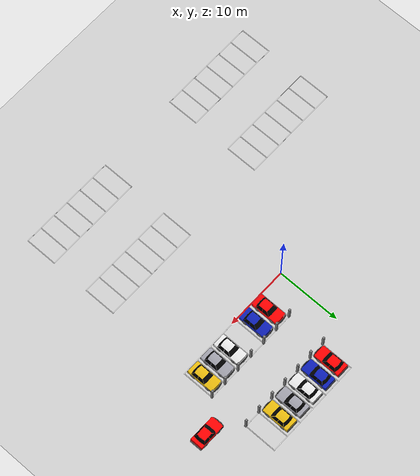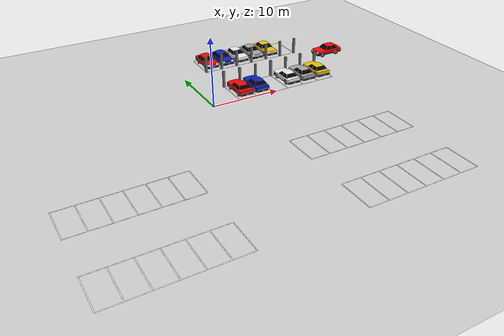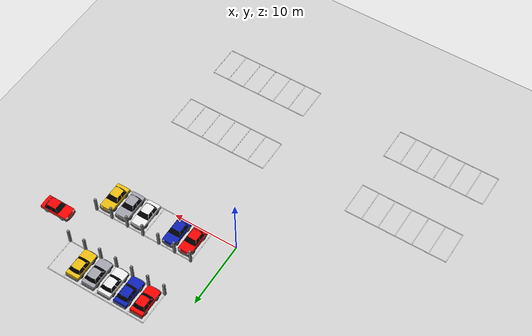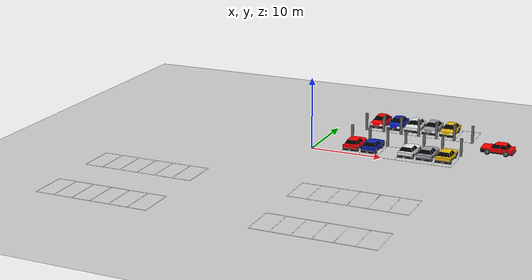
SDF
<sdf version="1.6">
 <world name="parking_lot">
  <include><uri>model://sun</uri></include>
  <include><uri>model://ground_plane</uri></include>
  <model name="parking_lines">
   <static>true</static>
   <link name="lines">
    <visual name="A_r0_div0">
     <pose>4.050 13.500 0.02 0 0 0</pose>
     <geometry><box><size>0.100 5.000 0.01</size></box></geometry>
     <material><ambient>1 1 1 1</ambient><diffuse>1 1 1 1</diffuse></material>
    </visual>
    <visual name="A_r0_div1">
     <pose>6.650 13.500 0.02 0 0 0</pose>
     <geometry><box><size>0.100 5.000 0.01</size></box></geometry>
     <material><ambient>1 1 1 1</ambient><diffuse>1 1 1 1</diffuse></material>
    </visual>
    <visual name="A_r0_div2">
     <pose>9.250 13.500 0.02 0 0 0</pose>
     <geometry><box><size>0.100 5.000 0.01</size></box></geometry>
     <material><ambient>1 1 1 1</ambient><diffuse>1 1 1 1</diffuse></material>
    </visual>
    <visual name="A_r0_div3">
     <pose>11.850 13.500 0.02 0 0 0</pose>
     <geometry><box><size>0.100 5.000 0.01</size></box></geometry>
     <material><ambient>1 1 1 1</ambient><diffuse>1 1 1 1</diffuse></material>
    </visual>
    <visual name="A_r0_div4">
     <pose>14.450 13.500 0.02 0 0 0</pose>
     <geometry><box><size>0.100 5.000 0.01</size></box></geometry>
     <material><ambient>1 1 1 1</ambient><diffuse>1 1 1 1</diffuse></material>
    </visual>
    <visual name="A_r0_div5">
     <pose>17.050 13.500 0.02 0 0 0</pose>
     <geometry><box><size>0.100 5.000 0.01</size></box></geometry>
     <material><ambient>1 1 1 1</ambient><diffuse>1 1 1 1</diffuse></material>
    </visual>
    <visual name="A_r0_div6">
     <pose>19.650 13.500 0.02 0 0 0</pose>
     <geometry><box><size>0.100 5.000 0.01</size></box></geometry>
     <material><ambient>1 1 1 1</ambient><diffuse>1 1 1 1</diffuse></material>
    </visual>
    <visual name="A_r1_div0">
     <pose>4.050 2.500 0.02 0 0 0</pose>
     <geometry><box><size>0.100 5.000 0.01</size></box></geometry>
     <material><ambient>1 1 1 1</ambient><diffuse>1 1 1 1</diffuse></material>
    </visual>
    <visual name="A_r1_div1">
     <pose>6.650 2.500 0.02 0 0 0</pose>
     <geometry><box><size>0.100 5.000 0.01</size></box></geometry>
     <material><ambient>1 1 1 1</ambient><diffuse>1 1 1 1</diffuse></material>
    </visual>
    <visual name="A_r1_div2">
     <pose>9.250 2.500 0.02 0 0 0</pose>
     <geometry><box><size>0.100 5.000 0.01</size></box></geometry>
     <material><ambient>1 1 1 1</ambient><diffuse>1 1 1 1</diffuse></material>
    </visual>
    <visual name="A_r1_div3">
     <pose>11.850 2.500 0.02 0 0 0</pose>
     <geometry><box><size>0.100 5.000 0.01</size></box></geometry>
     <material><ambient>1 1 1 1</ambient><diffuse>1 1 1 1</diffuse></material>
    </visual>
    <visual name="A_r1_div4">
     <pose>14.450 2.500 0.02 0 0 0</pose>
     <geometry><box><size>0.100 5.000 0.01</size></box></geometry>
     <material><ambient>1 1 1 1</ambient><diffuse>1 1 1 1</diffuse></material>
    </visual>
    <visual name="A_r1_div5">
     <pose>17.050 2.500 0.02 0 0 0</pose>
     <geometry><box><size>0.100 5.000 0.01</size></box></geometry>
     <material><ambient>1 1 1 1</ambient><diffuse>1 1 1 1</diffuse></material>
    </visual>
    <visual name="A_r1_div6">
     <pose>19.650 2.500 0.02 0 0 0</pose>
     <geometry><box><size>0.100 5.000 0.01</size></box></geometry>
     <material><ambient>1 1 1 1</ambient><diffuse>1 1 1 1</diffuse></material>
    </visual>
    <visual name="A_bound0">
     <pose>11.850 0.000 0.02 0 0 0</pose>
     <geometry><box><size>15.700 0.100 0.01</size></box></geometry>
     <material><ambient>1 1 1 1</ambient><diffuse>1 1 1 1</diffuse></material>
    </visual>
    <visual name="A_bound1">
     <pose>11.850 5.000 0.02 0 0 0</pose>
     <geometry><box><size>15.700 0.100 0.01</size></box></geometry>
     <material><ambient>1 1 1 1</ambient><diffuse>1 1 1 1</diffuse></material>
    </visual>
    <visual name="A_bound2">
     <pose>11.850 11.000 0.02 0 0 0</pose>
     <geometry><box><size>15.700 0.100 0.01</size></box></geometry>
     <material><ambient>1 1 1 1</ambient><diffuse>1 1 1 1</diffuse></material>
    </visual>
    <visual name="A_bound3">
     <pose>11.850 16.000 0.02 0 0 0</pose>
     <geometry><box><size>15.700 0.100 0.01</size></box></geometry>
     <material><ambient>1 1 1 1</ambient><diffuse>1 1 1 1</diffuse></material>
    </visual>
    <visual name="B_r0_div0">
     <pose>-24.950 -15.500 0.02 0 0 0</pose>
     <geometry><box><size>0.100 5.000 0.01</size></box></geometry>
     <material><ambient>1 1 1 1</ambient><diffuse>1 1 1 1</diffuse></material>
    </visual>
    <visual name="B_r0_div1">
     <pose>-22.350 -15.500 0.02 0 0 0</pose>
     <geometry><box><size>0.100 5.000 0.01</size></box></geometry>
     <material><ambient>1 1 1 1</ambient><diffuse>1 1 1 1</diffuse></material>
    </visual>
    <visual name="B_r0_div2">
     <pose>-19.750 -15.500 0.02 0 0 0</pose>
     <geometry><box><size>0.100 5.000 0.01</size></box></geometry>
     <material><ambient>1 1 1 1</ambient><diffuse>1 1 1 1</diffuse></material>
    </visual>
    <visual name="B_r0_div3">
     <pose>-17.150 -15.500 0.02 0 0 0</pose>
     <geometry><box><size>0.100 5.000 0.01</size></box></geometry>
     <material><ambient>1 1 1 1</ambient><diffuse>1 1 1 1</diffuse></material>
    </visual>
    <visual name="B_r0_div4">
     <pose>-14.550 -15.500 0.02 0 0 0</pose>
     <geometry><box><size>0.100 5.000 0.01</size></box></geometry>
     <material><ambient>1 1 1 1</ambient><diffuse>1 1 1 1</diffuse></material>
    </visual>
    <visual name="B_r0_div5">
     <pose>-11.950 -15.500 0.02 0 0 0</pose>
     <geometry><box><size>0.100 5.000 0.01</size></box></geometry>
     <material><ambient>1 1 1 1</ambient><diffuse>1 1 1 1</diffuse></material>
    </visual>
    <visual name="B_r0_div6">
     <pose>-9.350 -15.500 0.02 0 0 0</pose>
     <geometry><box><size>0.100 5.000 0.01</size></box></geometry>
     <material><ambient>1 1 1 1</ambient><diffuse>1 1 1 1</diffuse></material>
    </visual>
    <visual name="B_r1_div0">
     <pose>-24.950 -26.500 0.02 0 0 0</pose>
     <geometry><box><size>0.100 5.000 0.01</size></box></geometry>
     <material><ambient>1 1 1 1</ambient><diffuse>1 1 1 1</diffuse></material>
    </visual>
    <visual name="B_r1_div1">
     <pose>-22.350 -26.500 0.02 0 0 0</pose>
     <geometry><box><size>0.100 5.000 0.01</size></box></geometry>
     <material><ambient>1 1 1 1</ambient><diffuse>1 1 1 1</diffuse></material>
    </visual>
    <visual name="B_r1_div2">
     <pose>-19.750 -26.500 0.02 0 0 0</pose>
     <geometry><box><size>0.100 5.000 0.01</size></box></geometry>
     <material><ambient>1 1 1 1</ambient><diffuse>1 1 1 1</diffuse></material>
    </visual>
    <visual name="B_r1_div3">
     <pose>-17.150 -26.500 0.02 0 0 0</pose>
     <geometry><box><size>0.100 5.000 0.01</size></box></geometry>
     <material><ambient>1 1 1 1</ambient><diffuse>1 1 1 1</diffuse></material>
    </visual>
    <visual name="B_r1_div4">
     <pose>-14.550 -26.500 0.02 0 0 0</pose>
     <geometry><box><size>0.100 5.000 0.01</size></box></geometry>
     <material><ambient>1 1 1 1</ambient><diffuse>1 1 1 1</diffuse></material>
    </visual>
    <visual name="B_r1_div5">
     <pose>-11.950 -26.500 0.02 0 0 0</pose>
     <geometry><box><size>0.100 5.000 0.01</size></box></geometry>
     <material><ambient>1 1 1 1</ambient><diffuse>1 1 1 1</diffuse></material>
    </visual>
    <visual name="B_r1_div6">
     <pose>-9.350 -26.500 0.02 0 0 0</pose>
     <geometry><box><size>0.100 5.000 0.01</size></box></geometry>
     <material><ambient>1 1 1 1</ambient><diffuse>1 1 1 1</diffuse></material>
    </visual>
    <visual name="B_bound0">
     <pose>-17.150 -29.000 0.02 0 0 0</pose>
     <geometry><box><size>15.700 0.100 0.01</size></box></geometry>
     <material><ambient>1 1 1 1</ambient><diffuse>1 1 1 1</diffuse></material>
    </visual>
    <visual name="B_bound1">
     <pose>-17.150 -24.000 0.02 0 0 0</pose>
     <geometry><box><size>15.700 0.100 0.01</size></box></geometry>
     <material><ambient>1 1 1 1</ambient><diffuse>1 1 1 1</diffuse></material>
    </visual>
    <visual name="B_bound2">
     <pose>-17.150 -18.000 0.02 0 0 0</pose>
     <geometry><box><size>15.700 0.100 0.01</size></box></geometry>
     <material><ambient>1 1 1 1</ambient><diffuse>1 1 1 1</diffuse></material>
    </visual>
    <visual name="B_bound3">
     <pose>-17.150 -13.000 0.02 0 0 0</pose>
     <geometry><box><size>15.700 0.100 0.01</size></box></geometry>
     <material><ambient>1 1 1 1</ambient><diffuse>1 1 1 1</diffuse></material>
    </visual>
    <visual name="C_r0_div0">
     <pose>4.050 -15.500 0.02 0 0 0</pose>
     <geometry><box><size>0.100 5.000 0.01</size></box></geometry>
     <material><ambient>1 1 1 1</ambient><diffuse>1 1 1 1</diffuse></material>
    </visual>
    <visual name="C_r0_div1">
     <pose>6.650 -15.500 0.02 0 0 0</pose>
     <geometry><box><size>0.100 5.000 0.01</size></box></geometry>
     <material><ambient>1 1 1 1</ambient><diffuse>1 1 1 1</diffuse></material>
    </visual>
    <visual name="C_r0_div2">
     <pose>9.250 -15.500 0.02 0 0 0</pose>
     <geometry><box><size>0.100 5.000 0.01</size></box></geometry>
     <material><ambient>1 1 1 1</ambient><diffuse>1 1 1 1</diffuse></material>
    </visual>
    <visual name="C_r0_div3">
     <pose>11.850 -15.500 0.02 0 0 0</pose>
     <geometry><box><size>0.100 5.000 0.01</size></box></geometry>
     <material><ambient>1 1 1 1</ambient><diffuse>1 1 1 1</diffuse></material>
    </visual>
    <visual name="C_r0_div4">
     <pose>14.450 -15.500 0.02 0 0 0</pose>
     <geometry><box><size>0.100 5.000 0.01</size></box></geometry>
     <material><ambient>1 1 1 1</ambient><diffuse>1 1 1 1</diffuse></material>
    </visual>
    <visual name="C_r0_div5">
     <pose>17.050 -15.500 0.02 0 0 0</pose>
     <geometry><box><size>0.100 5.000 0.01</size></box></geometry>
     <material><ambient>1 1 1 1</ambient><diffuse>1 1 1 1</diffuse></material>
    </visual>
    <visual name="C_r0_div6">
     <pose>19.650 -15.500 0.02 0 0 0</pose>
     <geometry><box><size>0.100 5.000 0.01</size></box></geometry>
     <material><ambient>1 1 1 1</ambient><diffuse>1 1 1 1</diffuse></material>
    </visual>
    <visual name="C_r1_div0">
     <pose>4.050 -26.500 0.02 0 0 0</pose>
     <geometry><box><size>0.100 5.000 0.01</size></box></geometry>
     <material><ambient>1 1 1 1</ambient><diffuse>1 1 1 1</diffuse></material>
    </visual>
    <visual name="C_r1_div1">
     <pose>6.650 -26.500 0.02 0 0 0</pose>
     <geometry><box><size>0.100 5.000 0.01</size></box></geometry>
     <material><ambient>1 1 1 1</ambient><diffuse>1 1 1 1</diffuse></material>
    </visual>
    <visual name="C_r1_div2">
     <pose>9.250 -26.500 0.02 0 0 0</pose>
     <geometry><box><size>0.100 5.000 0.01</size></box></geometry>
     <material><ambient>1 1 1 1</ambient><diffuse>1 1 1 1</diffuse></material>
    </visual>
    <visual name="C_r1_div3">
     <pose>11.850 -26.500 0.02 0 0 0</pose>
     <geometry><box><size>0.100 5.000 0.01</size></box></geometry>
     <material><ambient>1 1 1 1</ambient><diffuse>1 1 1 1</diffuse></material>
    </visual>
    <visual name="C_r1_div4">
     <pose>14.450 -26.500 0.02 0 0 0</pose>
     <geometry><box><size>0.100 5.000 0.01</size></box></geometry>
     <material><ambient>1 1 1 1</ambient><diffuse>1 1 1 1</diffuse></material>
    </visual>
    <visual name="C_r1_div5">
     <pose>17.050 -26.500 0.02 0 0 0</pose>
     <geometry><box><size>0.100 5.000 0.01</size></box></geometry>
     <material><ambient>1 1 1 1</ambient><diffuse>1 1 1 1</diffuse></material>
    </visual>
    <visual name="C_r1_div6">
     <pose>19.650 -26.500 0.02 0 0 0</pose>
     <geometry><box><size>0.100 5.000 0.01</size></box></geometry>
     <material><ambient>1 1 1 1</ambient><diffuse>1 1 1 1</diffuse></material>
    </visual>
    <visual name="C_bound0">
     <pose>11.850 -29.000 0.02 0 0 0</pose>
     <geometry><box><size>15.700 0.100 0.01</size></box></geometry>
     <material><ambient>1 1 1 1</ambient><diffuse>1 1 1 1</diffuse></material>
    </visual>
    <visual name="C_bound1">
     <pose>11.850 -24.000 0.02 0 0 0</pose>
     <geometry><box><size>15.700 0.100 0.01</size></box></geometry>
     <material><ambient>1 1 1 1</ambient><diffuse>1 1 1 1</diffuse></material>
    </visual>
    <visual name="C_bound2">
     <pose>11.850 -18.000 0.02 0 0 0</pose>
     <geometry><box><size>15.700 0.100 0.01</size></box></geometry>
     <material><ambient>1 1 1 1</ambient><diffuse>1 1 1 1</diffuse></material>
    </visual>
    <visual name="C_bound3">
     <pose>11.850 -13.000 0.02 0 0 0</pose>
     <geometry><box><size>15.700 0.100 0.01</size></box></geometry>
     <material><ambient>1 1 1 1</ambient><diffuse>1 1 1 1</diffuse></material>
    </visual>
   </link>
  </model>
  <model name="pillars">
   <static>true</static>
   <link name="pillars_link">
    <collision name="pc0">
     <pose>4.050 11.000 1.25 0 0 0</pose>
     <geometry><box><size>0.3 0.3 2.5</size></box></geometry>
    </collision>
    <visual name="pv0">
     <pose>4.050 11.000 1.25 0 0 0</pose>
     <geometry><box><size>0.3 0.3 2.5</size></box></geometry>
     <material><ambient>0.5 0.5 0.5 1</ambient><diffuse>0.5 0.5 0.5 1</diffuse></material>
    </visual>
    <collision name="pc1">
     <pose>6.650 11.000 1.25 0 0 0</pose>
     <geometry><box><size>0.3 0.3 2.5</size></box></geometry>
    </collision>
    <visual name="pv1">
     <pose>6.650 11.000 1.25 0 0 0</pose>
     <geometry><box><size>0.3 0.3 2.5</size></box></geometry>
     <material><ambient>0.5 0.5 0.5 1</ambient><diffuse>0.5 0.5 0.5 1</diffuse></material>
    </visual>
    <collision name="pc2">
     <pose>9.250 11.000 1.25 0 0 0</pose>
     <geometry><box><size>0.3 0.3 2.5</size></box></geometry>
    </collision>
    <visual name="pv2">
     <pose>9.250 11.000 1.25 0 0 0</pose>
     <geometry><box><size>0.3 0.3 2.5</size></box></geometry>
     <material><ambient>0.5 0.5 0.5 1</ambient><diffuse>0.5 0.5 0.5 1</diffuse></material>
    </visual>
    <collision name="pc3">
     <pose>11.850 11.000 1.25 0 0 0</pose>
     <geometry><box><size>0.3 0.3 2.5</size></box></geometry>
    </collision>
    <visual name="pv3">
     <pose>11.850 11.000 1.25 0 0 0</pose>
     <geometry><box><size>0.3 0.3 2.5</size></box></geometry>
     <material><ambient>0.5 0.5 0.5 1</ambient><diffuse>0.5 0.5 0.5 1</diffuse></material>
    </visual>
    <collision name="pc4">
     <pose>14.450 11.000 1.25 0 0 0</pose>
     <geometry><box><size>0.3 0.3 2.5</size></box></geometry>
    </collision>
    <visual name="pv4">
     <pose>14.450 11.000 1.25 0 0 0</pose>
     <geometry><box><size>0.3 0.3 2.5</size></box></geometry>
     <material><ambient>0.5 0.5 0.5 1</ambient><diffuse>0.5 0.5 0.5 1</diffuse></material>
    </visual>
    <collision name="pc5">
     <pose>17.050 11.000 1.25 0 0 0</pose>
     <geometry><box><size>0.3 0.3 2.5</size></box></geometry>
    </collision>
    <visual name="pv5">
     <pose>17.050 11.000 1.25 0 0 0</pose>
     <geometry><box><size>0.3 0.3 2.5</size></box></geometry>
     <material><ambient>0.5 0.5 0.5 1</ambient><diffuse>0.5 0.5 0.5 1</diffuse></material>
    </visual>
    <collision name="pc6">
     <pose>19.650 11.000 1.25 0 0 0</pose>
     <geometry><box><size>0.3 0.3 2.5</size></box></geometry>
    </collision>
    <visual name="pv6">
     <pose>19.650 11.000 1.25 0 0 0</pose>
     <geometry><box><size>0.3 0.3 2.5</size></box></geometry>
     <material><ambient>0.5 0.5 0.5 1</ambient><diffuse>0.5 0.5 0.5 1</diffuse></material>
    </visual>
    <collision name="pc7">
     <pose>4.050 5.000 1.25 0 0 0</pose>
     <geometry><box><size>0.3 0.3 2.5</size></box></geometry>
    </collision>
    <visual name="pv7">
     <pose>4.050 5.000 1.25 0 0 0</pose>
     <geometry><box><size>0.3 0.3 2.5</size></box></geometry>
     <material><ambient>0.5 0.5 0.5 1</ambient><diffuse>0.5 0.5 0.5 1</diffuse></material>
    </visual>
    <collision name="pc8">
     <pose>6.650 5.000 1.25 0 0 0</pose>
     <geometry><box><size>0.3 0.3 2.5</size></box></geometry>
    </collision>
    <visual name="pv8">
     <pose>6.650 5.000 1.25 0 0 0</pose>
     <geometry><box><size>0.3 0.3 2.5</size></box></geometry>
     <material><ambient>0.5 0.5 0.5 1</ambient><diffuse>0.5 0.5 0.5 1</diffuse></material>
    </visual>
    <collision name="pc9">
     <pose>9.250 5.000 1.25 0 0 0</pose>
     <geometry><box><size>0.3 0.3 2.5</size></box></geometry>
    </collision>
    <visual name="pv9">
     <pose>9.250 5.000 1.25 0 0 0</pose>
     <geometry><box><size>0.3 0.3 2.5</size></box></geometry>
     <material><ambient>0.5 0.5 0.5 1</ambient><diffuse>0.5 0.5 0.5 1</diffuse></material>
    </visual>
    <collision name="pc10">
     <pose>11.850 5.000 1.25 0 0 0</pose>
     <geometry><box><size>0.3 0.3 2.5</size></box></geometry>
    </collision>
    <visual name="pv10">
     <pose>11.850 5.000 1.25 0 0 0</pose>
     <geometry><box><size>0.3 0.3 2.5</size></box></geometry>
     <material><ambient>0.5 0.5 0.5 1</ambient><diffuse>0.5 0.5 0.5 1</diffuse></material>
    </visual>
    <collision name="pc11">
     <pose>14.450 5.000 1.25 0 0 0</pose>
     <geometry><box><size>0.3 0.3 2.5</size></box></geometry>
    </collision>
    <visual name="pv11">
     <pose>14.450 5.000 1.25 0 0 0</pose>
     <geometry><box><size>0.3 0.3 2.5</size></box></geometry>
     <material><ambient>0.5 0.5 0.5 1</ambient><diffuse>0.5 0.5 0.5 1</diffuse></material>
    </visual>
    <collision name="pc12">
     <pose>17.050 5.000 1.25 0 0 0</pose>
     <geometry><box><size>0.3 0.3 2.5</size></box></geometry>
    </collision>
    <visual name="pv12">
     <pose>17.050 5.000 1.25 0 0 0</pose>
     <geometry><box><size>0.3 0.3 2.5</size></box></geometry>
     <material><ambient>0.5 0.5 0.5 1</ambient><diffuse>0.5 0.5 0.5 1</diffuse></material>
    </visual>
    <collision name="pc13">
     <pose>19.650 5.000 1.25 0 0 0</pose>
     <geometry><box><size>0.3 0.3 2.5</size></box></geometry>
    </collision>
    <visual name="pv13">
     <pose>19.650 5.000 1.25 0 0 0</pose>
     <geometry><box><size>0.3 0.3 2.5</size></box></geometry>
     <material><ambient>0.5 0.5 0.5 1</ambient><diffuse>0.5 0.5 0.5 1</diffuse></material>
    </visual>
   </link>
  </model>
  <model name="car_A01">
   <static>true</static>
   <pose>5.350 13.500 0 0 0 0.0</pose>
   <link name="body">
    <collision name="col">
     <pose>0 0 0.75 0 0 0</pose>
     <geometry><box><size>2.1 4.7 1.5</size></box></geometry>
    </collision>
    <visual name="vis">
     <geometry><mesh><uri>model://target_car/meshes/Car_red.dae</uri><scale>1 1 1</scale></mesh></geometry>
    </visual>
    <visual name="plate_front">
     <pose>0 -2.4 0.45 0 0 0.0</pose>
     <geometry><box><size>0.335 0.01 0.17</size></box></geometry>
     <material>
      <script>
       <uri>model://target_car/materials/scripts</uri>
       <uri>model://target_car/materials/textures</uri>
       <name>CarPlate/A01</name>
      </script>
     </material>
    </visual>
    <visual name="plate_rear">
     <pose>0 2.285 0.45 0 0 0.0</pose>
     <geometry><box><size>0.335 0.01 0.17</size></box></geometry>
     <material>
      <script>
       <uri>model://target_car/materials/scripts</uri>
       <uri>model://target_car/materials/textures</uri>
       <name>CarPlate/A01</name>
      </script>
     </material>
    </visual>
   </link>
  </model>
  <model name="car_A02">
   <static>true</static>
   <pose>7.950 13.500 0 0 0 0.0</pose>
   <link name="body">
    <collision name="col">
     <pose>0 0 0.75 0 0 0</pose>
     <geometry><box><size>2.1 4.7 1.5</size></box></geometry>
    </collision>
    <visual name="vis">
     <geometry><mesh><uri>model://target_car/meshes/Car_blue.dae</uri><scale>1 1 1</scale></mesh></geometry>
    </visual>
    <visual name="plate_front">
     <pose>0 -2.4 0.45 0 0 0.0</pose>
     <geometry><box><size>0.335 0.01 0.17</size></box></geometry>
     <material>
      <script>
       <uri>model://target_car/materials/scripts</uri>
       <uri>model://target_car/materials/textures</uri>
       <name>CarPlate/A02</name>
      </script>
     </material>
    </visual>
    <visual name="plate_rear">
     <pose>0 2.285 0.45 0 0 0.0</pose>
     <geometry><box><size>0.335 0.01 0.17</size></box></geometry>
     <material>
      <script>
       <uri>model://target_car/materials/scripts</uri>
       <uri>model://target_car/materials/textures</uri>
       <name>CarPlate/A02</name>
      </script>
     </material>
    </visual>
   </link>
  </model>
  <model name="car_A03">
   <static>true</static>
   <pose>10.550 13.500 0 0 0 0.0</pose>
   <link name="body">
    <collision name="col">
     <pose>0 0 0.75 0 0 0</pose>
     <geometry><box><size>2.1 4.7 1.5</size></box></geometry>
    </collision>
    <visual name="vis">
     <geometry><mesh><uri>model://target_car/meshes/Car_white.dae</uri><scale>1 1 1</scale></mesh></geometry>
    </visual>
    <visual name="plate_front">
     <pose>0 -2.4 0.45 0 0 0.0</pose>
     <geometry><box><size>0.335 0.01 0.17</size></box></geometry>
     <material>
      <script>
       <uri>model://target_car/materials/scripts</uri>
       <uri>model://target_car/materials/textures</uri>
       <name>CarPlate/A03</name>
      </script>
     </material>
    </visual>
    <visual name="plate_rear">
     <pose>0 2.285 0.45 0 0 0.0</pose>
     <geometry><box><size>0.335 0.01 0.17</size></box></geometry>
     <material>
      <script>
       <uri>model://target_car/materials/scripts</uri>
       <uri>model://target_car/materials/textures</uri>
       <name>CarPlate/A03</name>
      </script>
     </material>
    </visual>
   </link>
  </model>
  <model name="car_A04">
   <static>true</static>
   <pose>13.150 13.500 0 0 0 0.0</pose>
   <link name="body">
    <collision name="col">
     <pose>0 0 0.75 0 0 0</pose>
     <geometry><box><size>2.1 4.7 1.5</size></box></geometry>
    </collision>
    <visual name="vis">
     <geometry><mesh><uri>model://target_car/meshes/Car_silver.dae</uri><scale>1 1 1</scale></mesh></geometry>
    </visual>
    <visual name="plate_front">
     <pose>0 -2.4 0.45 0 0 0.0</pose>
     <geometry><box><size>0.335 0.01 0.17</size></box></geometry>
     <material>
      <script>
       <uri>model://target_car/materials/scripts</uri>
       <uri>model://target_car/materials/textures</uri>
       <name>CarPlate/A04</name>
      </script>
     </material>
    </visual>
    <visual name="plate_rear">
     <pose>0 2.285 0.45 0 0 0.0</pose>
     <geometry><box><size>0.335 0.01 0.17</size></box></geometry>
     <material>
      <script>
       <uri>model://target_car/materials/scripts</uri>
       <uri>model://target_car/materials/textures</uri>
       <name>CarPlate/A04</name>
      </script>
     </material>
    </visual>
   </link>
  </model>
  <model name="car_A05">
   <static>true</static>
   <pose>15.750 13.500 0 0 0 0.0</pose>
   <link name="body">
    <collision name="col">
     <pose>0 0 0.75 0 0 0</pose>
     <geometry><box><size>2.1 4.7 1.5</size></box></geometry>
    </collision>
    <visual name="vis">
     <geometry><mesh><uri>model://target_car/meshes/Car_yellow.dae</uri><scale>1 1 1</scale></mesh></geometry>
    </visual>
    <visual name="plate_front">
     <pose>0 -2.4 0.45 0 0 0.0</pose>
     <geometry><box><size>0.335 0.01 0.17</size></box></geometry>
     <material>
      <script>
       <uri>model://target_car/materials/scripts</uri>
       <uri>model://target_car/materials/textures</uri>
       <name>CarPlate/A05</name>
      </script>
     </material>
    </visual>
    <visual name="plate_rear">
     <pose>0 2.285 0.45 0 0 0.0</pose>
     <geometry><box><size>0.335 0.01 0.17</size></box></geometry>
     <material>
      <script>
       <uri>model://target_car/materials/scripts</uri>
       <uri>model://target_car/materials/textures</uri>
       <name>CarPlate/A05</name>
      </script>
     </material>
    </visual>
   </link>
  </model>
  <model name="car_A07">
   <static>true</static>
   <pose>5.350 2.500 0 0 0 3.14159</pose>
   <link name="body">
    <collision name="col">
     <pose>0 0 0.75 0 0 0</pose>
     <geometry><box><size>2.1 4.7 1.5</size></box></geometry>
    </collision>
    <visual name="vis">
     <geometry><mesh><uri>model://target_car/meshes/Car_red.dae</uri><scale>1 1 1</scale></mesh></geometry>
    </visual>
    <visual name="plate_front">
     <pose>0 -2.4 0.45 0 0 0.0</pose>
     <geometry><box><size>0.335 0.01 0.17</size></box></geometry>
     <material>
      <script>
       <uri>model://target_car/materials/scripts</uri>
       <uri>model://target_car/materials/textures</uri>
       <name>CarPlate/A07</name>
      </script>
     </material>
    </visual>
    <visual name="plate_rear">
     <pose>0 2.285 0.45 0 0 0.0</pose>
     <geometry><box><size>0.335 0.01 0.17</size></box></geometry>
     <material>
      <script>
       <uri>model://target_car/materials/scripts</uri>
       <uri>model://target_car/materials/textures</uri>
       <name>CarPlate/A07</name>
      </script>
     </material>
    </visual>
   </link>
  </model>
  <model name="car_A08">
   <static>true</static>
   <pose>7.950 2.500 0 0 0 3.14159</pose>
   <link name="body">
    <collision name="col">
     <pose>0 0 0.75 0 0 0</pose>
     <geometry><box><size>2.1 4.7 1.5</size></box></geometry>
    </collision>
    <visual name="vis">
     <geometry><mesh><uri>model://target_car/meshes/Car_blue.dae</uri><scale>1 1 1</scale></mesh></geometry>
    </visual>
    <visual name="plate_front">
     <pose>0 -2.4 0.45 0 0 0.0</pose>
     <geometry><box><size>0.335 0.01 0.17</size></box></geometry>
     <material>
      <script>
       <uri>model://target_car/materials/scripts</uri>
       <uri>model://target_car/materials/textures</uri>
       <name>CarPlate/A08</name>
      </script>
     </material>
    </visual>
    <visual name="plate_rear">
     <pose>0 2.285 0.45 0 0 0.0</pose>
     <geometry><box><size>0.335 0.01 0.17</size></box></geometry>
     <material>
      <script>
       <uri>model://target_car/materials/scripts</uri>
       <uri>model://target_car/materials/textures</uri>
       <name>CarPlate/A08</name>
      </script>
     </material>
    </visual>
   </link>
  </model>
  <model name="car_A10">
   <static>true</static>
   <pose>13.150 2.500 0 0 0 3.14159</pose>
   <link name="body">
    <collision name="col">
     <pose>0 0 0.75 0 0 0</pose>
     <geometry><box><size>2.1 4.7 1.5</size></box></geometry>
    </collision>
    <visual name="vis">
     <geometry><mesh><uri>model://target_car/meshes/Car_white.dae</uri><scale>1 1 1</scale></mesh></geometry>
    </visual>
    <visual name="plate_front">
     <pose>0 -2.4 0.45 0 0 0.0</pose>
     <geometry><box><size>0.335 0.01 0.17</size></box></geometry>
     <material>
      <script>
       <uri>model://target_car/materials/scripts</uri>
       <uri>model://target_car/materials/textures</uri>
       <name>CarPlate/A10</name>
      </script>
     </material>
    </visual>
    <visual name="plate_rear">
     <pose>0 2.285 0.45 0 0 0.0</pose>
     <geometry><box><size>0.335 0.01 0.17</size></box></geometry>
     <material>
      <script>
       <uri>model://target_car/materials/scripts</uri>
       <uri>model://target_car/materials/textures</uri>
       <name>CarPlate/A10</name>
      </script>
     </material>
    </visual>
   </link>
  </model>
  <model name="car_A11">
   <static>true</static>
   <pose>15.750 2.500 0 0 0 3.14159</pose>
   <link name="body">
    <collision name="col">
     <pose>0 0 0.75 0 0 0</pose>
     <geometry><box><size>2.1 4.7 1.5</size></box></geometry>
    </collision>
    <visual name="vis">
     <geometry><mesh><uri>model://target_car/meshes/Car_silver.dae</uri><scale>1 1 1</scale></mesh></geometry>
    </visual>
    <visual name="plate_front">
     <pose>0 -2.4 0.45 0 0 0.0</pose>
     <geometry><box><size>0.335 0.01 0.17</size></box></geometry>
     <material>
      <script>
       <uri>model://target_car/materials/scripts</uri>
       <uri>model://target_car/materials/textures</uri>
       <name>CarPlate/A11</name>
      </script>
     </material>
    </visual>
    <visual name="plate_rear">
     <pose>0 2.285 0.45 0 0 0.0</pose>
     <geometry><box><size>0.335 0.01 0.17</size></box></geometry>
     <material>
      <script>
       <uri>model://target_car/materials/scripts</uri>
       <uri>model://target_car/materials/textures</uri>
       <name>CarPlate/A11</name>
      </script>
     </material>
    </visual>
   </link>
  </model>
  <model name="car_A12">
   <static>true</static>
   <pose>18.350 2.500 0 0 0 3.14159</pose>
   <link name="body">
    <collision name="col">
     <pose>0 0 0.75 0 0 0</pose>
     <geometry><box><size>2.1 4.7 1.5</size></box></geometry>
    </collision>
    <visual name="vis">
     <geometry><mesh><uri>model://target_car/meshes/Car_yellow.dae</uri><scale>1 1 1</scale></mesh></geometry>
    </visual>
    <visual name="plate_front">
     <pose>0 -2.4 0.45 0 0 0.0</pose>
     <geometry><box><size>0.335 0.01 0.17</size></box></geometry>
     <material>
      <script>
       <uri>model://target_car/materials/scripts</uri>
       <uri>model://target_car/materials/textures</uri>
       <name>CarPlate/A12</name>
      </script>
     </material>
    </visual>
    <visual name="plate_rear">
     <pose>0 2.285 0.45 0 0 0.0</pose>
     <geometry><box><size>0.335 0.01 0.17</size></box></geometry>
     <material>
      <script>
       <uri>model://target_car/materials/scripts</uri>
       <uri>model://target_car/materials/textures</uri>
       <name>CarPlate/A12</name>
      </script>
     </material>
    </visual>
   </link>
  </model>
  <model name="dynamic_car">
   <pose>24.000 8.000 0 0 0 3.14159</pose>
   <link name="body">
    <inertial>
     <pose>0 0 0.75 0 0 0</pose>
     <mass>200.0</mass>
     <inertia><ixx>111.0</ixx><iyy>405.7</iyy><izz>441.7</izz><ixy>0</ixy><ixz>0</ixz><iyz>0</iyz></inertia>
    </inertial>
    <collision name="col">
     <pose>0 0 0.75 0 0 0</pose>
     <geometry><box><size>4.7 2.1 1.5</size></box></geometry>
    </collision>
    <visual name="vis">
     <pose>0 0 0 0 0 1.5708</pose>
     <geometry><mesh><uri>model://target_car/meshes/Car_red.dae</uri><scale>1 1 1</scale></mesh></geometry>
    </visual>
    <visual name="plate_front">
     <pose>2.4 0 0.45 0 0 1.5708</pose>
     <geometry><box><size>0.335 0.01 0.17</size></box></geometry>
     <material>
      <script>
       <uri>model://target_car/materials/scripts</uri>
       <uri>model://target_car/materials/textures</uri>
       <name>CarPlate/DYN</name>
      </script>
     </material>
    </visual>
   </link>
   <plugin name="dyn_car_drive" filename="libgazebo_ros_planar_move.so">
    <ros><namespace>/dyn_car</namespace></ros>
    <update_rate>50</update_rate>
    <publish_rate>30</publish_rate>
    <publish_odom>true</publish_odom>
    <publish_odom_tf>false</publish_odom_tf>
    <odometry_frame>dyn_car_odom</odometry_frame>
    <robot_base_frame>dynamic_car</robot_base_frame>
    <covariance_x>0.0</covariance_x>
    <covariance_y>0.0</covariance_y>
    <covariance_yaw>0.0</covariance_yaw>
   </plugin>
  </model>
 </world>
</sdf>
